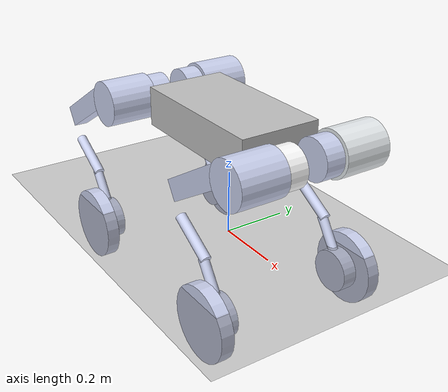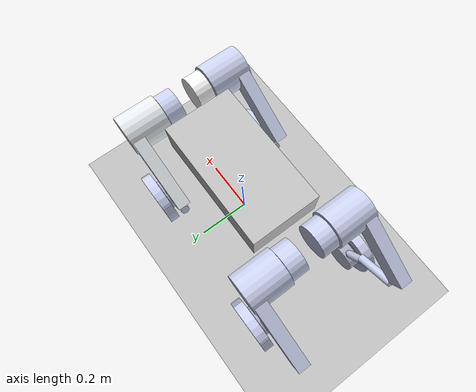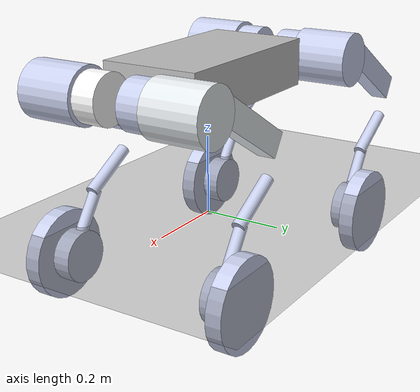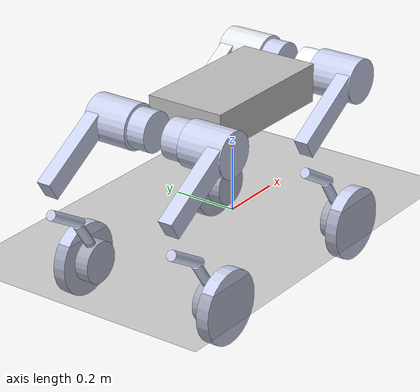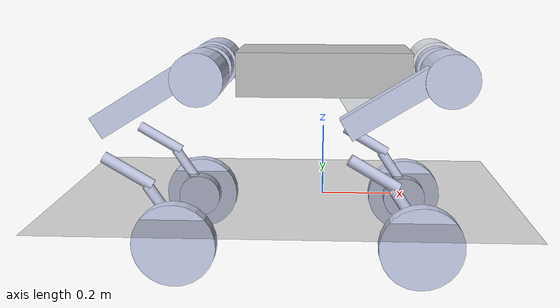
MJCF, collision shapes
<mujoco model="DOGURDF">
  <compiler angle="radian" meshdir="./meshes"/>

  <visual>
    <global offwidth="1920" offheight="1080"/>
    <quality shadowsize="4096"/>
    <map force="0.1" zfar="30"/>
    <rgba haze="0.15 0.25 0.35 1"/>
  </visual>

  <option timestep="0.005" iterations="10" ls_iterations="10" solver="Newton" integrator="Euler"
          impratio="10">
    <flag contact="enable" constraint="enable"/>
  </option>

  <default>
    <geom condim="3" friction="1.36 0.005 0.0001" solref="0.035 1.1" solimp="0.9 0.92 0.015"/>
    <joint damping="0.5" armature="0.01"/>
  </default>

  <asset>
    <texture name="grid" type="2d" builtin="checker" rgb1="0.3 0.3 0.3" rgb2="0.4 0.4 0.4"
             width="512" height="512" mark="edge" markrgb="0.2 0.2 0.2"/>
    <material name="grid_mat" texture="grid" texrepeat="20 20" texuniform="true"
              reflectance="0.1" shininess="0.1" specular="0.2"/>
    <mesh name="base_link" file="base_link.STL"/>
    <!-- Only the FL meshes exist on disk; the other three legs mirror them,
         matching how urdf/dogurdf.urdf reuses them with negative scale. -->
    <mesh name="FL_hip_mesh" file="FL_hip_link.STL"/>
    <mesh name="FR_hip_mesh" file="FL_hip_link.STL" scale="1 -1 1"/>
    <mesh name="RL_hip_mesh" file="FL_hip_link.STL" scale="-1 1 1"/>
    <mesh name="RR_hip_mesh" file="FL_hip_link.STL" scale="-1 -1 1"/>
    <mesh name="FL_thigh_mesh" file="FL_thigh_link.STL"/>
    <mesh name="FR_thigh_mesh" file="FL_thigh_link.STL" scale="1 -1 1"/>
    <mesh name="RL_thigh_mesh" file="FL_thigh_link.STL"/>
    <mesh name="RR_thigh_mesh" file="FL_thigh_link.STL" scale="1 -1 1"/>
    <mesh name="FL_calf_mesh" file="FL_calf_link.STL"/>
    <mesh name="FR_calf_mesh" file="FL_calf_link.STL" scale="1 -1 1"/>
    <mesh name="RL_calf_mesh" file="FL_calf_link.STL"/>
    <mesh name="RR_calf_mesh" file="FL_calf_link.STL" scale="1 -1 1"/>
    <mesh name="FL_wheel_mesh" file="FL_wheel_link.STL"/>
    <mesh name="FR_wheel_mesh" file="FL_wheel_link.STL" scale="1 -1 1"/>
    <mesh name="RL_wheel_mesh" file="FL_wheel_link.STL"/>
    <mesh name="RR_wheel_mesh" file="FL_wheel_link.STL" scale="1 -1 1"/>
  </asset>

  <worldbody>
    <!-- Ground: the only geom with contype=1, so it is the sole contact partner. -->
    <geom name="floor" type="plane" size="50 50 0.01" material="grid_mat"
          contype="1" conaffinity="0" priority="1" friction="1.36 0.005 0.0001" condim="3"/>

    <light name="ambient" mode="fixed" directional="true"
           diffuse="0.4 0.4 0.4" specular="0.1 0.1 0.1" pos="0 0 5" dir="0 0 -1"/>
    <light name="spotlight" mode="targetbodycom" target="torso"
           diffuse="0.8 0.8 0.8" specular="0.3 0.3 0.3" pos="0 -3 4" cutoff="45"/>
    <light name="fill_light" mode="fixed" directional="true"
           diffuse="0.3 0.3 0.4" specular="0.1 0.1 0.1" pos="3 3 3" dir="-1 -1 -1"/>

    <!-- torso: body 1 (base_link from the URDF, renamed for consistency with
         the rest of the codebase, which resolves the trunk by the name "torso") -->
    <body name="torso" pos="0 0 0.36">
      <inertial pos="0 0 -4.0153e-07" quat="1 0 0 0" mass="21.5"
                diaginertia="0.0145439 0.122635 0.132604"/>
      <freejoint/>
      <site name="imu" pos="0 0 0"/>
      <camera name="this_camera" mode="fixed" pos="0.30 0 0.06" euler="3.14 -1.57 1.57"
              resolution="480 640" fovy="58"/>
      <geom type="mesh" contype="0" conaffinity="0" group="1" density="0"
            rgba="0.75294 0.75294 0.75294 1" mesh="base_link"/>
      <geom name="torso_collision" type="box" size="0.237 0.125 0.06" pos="0 0 0"
            contype="0" conaffinity="1" group="3" rgba="0.75294 0.75294 0.75294 0"/>

      <!-- FL (Front Left) leg: bodies 2-5, joints 0-3 -->
      <body name="FL_hip_link" pos="0.3265 0.08 0">
        <inertial pos="-0.0096559 -0.00827404 0.00195208" quat="0.442032 0.549064 0.445917 0.551629" mass="1.5" diaginertia="0.00109134 0.000920711 0.000558709"/>
        <joint name="FL_hip_joint" pos="0 0 0" axis="1 0 0" range="-0.6 0.6" actuatorfrcrange="-150 150" frictionloss="0.2" armature="0.0289"/>
        <geom type="mesh" contype="0" conaffinity="0" group="1" density="0" rgba="0.792157 0.819608 0.933333 1" mesh="FL_hip_mesh"/>
        <geom name="FL_hip_collision" size="0.0615 0.03" pos="0 -0.02 0" quat="0.707105 0.707108 0 0" type="cylinder" contype="0" conaffinity="1" group="3" rgba="0.792157 0.819608 0.933333 0"/>
        <body name="FL_thigh_link" pos="0 0.1308 0" quat="0.872818 0 0.488046 0">
          <inertial pos="0 0 -0.0639" quat="1 0 0 0" mass="4.4" diaginertia="0.0498 0.0498 0.004"/>
          <joint name="FL_thigh_joint" pos="0 0 0" axis="0 1 0" range="-0.7 1.75" actuatorfrcrange="-150 150" frictionloss="0.2" armature="0.0289"/>
          <geom type="mesh" contype="0" conaffinity="0" group="1" density="0" rgba="0.898039 0.917647 0.929412 1" mesh="FL_thigh_mesh"/>
          <geom name="FL_thigh_collision_a" size="0.07 0.0725" pos="0 -0.046 0" quat="0.707105 0.707108 0 0" type="cylinder" contype="0" conaffinity="1" group="3" rgba="0.898039 0.917647 0.929412 0"/>
          <geom name="FL_thigh_collision_b" size="0.032 0.0225 0.15" pos="-0.03 0 -0.145" type="box" contype="0" conaffinity="1" group="3" rgba="0.898039 0.917647 0.929412 0"/>
          <body name="FL_calf_link" pos="0 0 -0.34" quat="0.51675 -1.24664e-06 -0.856137 1.24664e-06">
            <inertial pos="-0.052915 0.0225 -0.161555" quat="0.727889 0.125575 0.105269 0.665828" mass="0.82" diaginertia="0.00804 0.00804 0.0002"/>
            <joint name="FL_calf_joint" pos="0 0 0" axis="0 1 0" range="-1 0.35" actuatorfrcrange="-150 150" frictionloss="0.2" armature="0.1575"/>
            <geom type="mesh" contype="0" conaffinity="0" group="1" density="0" rgba="0.79216 0.81961 0.93333 1" mesh="FL_calf_mesh"/>
            <geom name="FL_calf_collision_a" size="0.016 0.075" pos="-0.01 0 -0.12" type="cylinder" contype="0" conaffinity="1" group="3" rgba="0.79216 0.81961 0.93333 0"/>
            <geom name="FL_calf_collision_b" size="0.015 0.065" pos="-0.045 0 -0.24" quat="0.974794 0 0.223106 0" type="cylinder" contype="0" conaffinity="1" group="3" rgba="0.79216 0.81961 0.93333 0"/>
            <geom name="FL_calf_collision_c" size="0.065 0.0225" pos="-0.105 0 -0.32" quat="0.707107 0.707107 0 0" type="cylinder" contype="0" conaffinity="1" group="3" rgba="0.79216 0.81961 0.93333 0"/>
            <body name="FL_wheel_link" pos="-0.10583 0.045 -0.32311" quat="0.994159 0 -0.107924 0">
              <inertial pos="-1.56973e-06 0.00208085 9.8644e-08" quat="0.544557 0.451063 0.451063 0.544557" mass="2.39" diaginertia="0.00248447 0.00127102 0.00127099"/>
              <joint name="FL_wheel_joint" pos="0 0 0" axis="0 1 0" actuatorfrcrange="-53 53" frictionloss="0.05" armature="0.00396"/>
              <geom type="mesh" contype="0" conaffinity="0" group="1" density="0" rgba="0.792157 0.819608 0.933333 1" mesh="FL_wheel_mesh"/>
              <geom name="FL" size="0.113 0.02" quat="0.707107 0.707107 0 0" type="cylinder" contype="0" conaffinity="1" group="3" rgba="0.792157 0.819608 0.933333 0"/>
              <site name="fl_wheel_site" pos="0 0 0" size="0.01"/>
            </body>
          </body>
        </body>
      </body>

      <!-- FR (Front Right) leg: bodies 6-9, joints 4-7 -->
      <body name="FR_hip_link" pos="0.3265 -0.08 0">
        <inertial pos="-0.0096559 0.00827404 -0.00195208" quat="0.442032 0.549064 0.445917 0.551629" mass="1.5" diaginertia="0.00108808 0.000917958 0.000557038"/>
        <joint name="FR_hip_joint" pos="0 0 0" axis="1 0 0" range="-0.6 0.6" actuatorfrcrange="-150 150" frictionloss="0.2" armature="0.0289"/>
        <geom type="mesh" contype="0" conaffinity="0" group="1" density="0" rgba="1 1 1 1" mesh="FR_hip_mesh"/>
        <geom name="FR_hip_collision" size="0.0615 0.03" pos="0 0.02 0" quat="0.707105 0.707108 0 0" type="cylinder" contype="0" conaffinity="1" group="3" rgba="1 1 1 0"/>
        <body name="FR_thigh_link" pos="0 -0.1308 0" quat="0.872818 0 0.488046 0">
          <inertial pos="0 0 -0.0639" quat="1 0 0 0" mass="4.4" diaginertia="0.0498 0.0498 0.004"/>
          <joint name="FR_thigh_joint" pos="0 0 0" axis="0 1 0" range="-0.7 1.75" actuatorfrcrange="-150 150" frictionloss="0.2" armature="0.0289"/>
          <geom type="mesh" contype="0" conaffinity="0" group="1" density="0" rgba="0.792157 0.819608 0.933333 1" mesh="FR_thigh_mesh"/>
          <geom name="FR_thigh_collision_a" size="0.07 0.0725" pos="0 0.046 0" quat="0.707105 0.707108 0 0" type="cylinder" contype="0" conaffinity="1" group="3" rgba="0.792157 0.819608 0.933333 0"/>
          <geom name="FR_thigh_collision_b" size="0.032 0.0225 0.15" pos="-0.03 0 -0.145" type="box" contype="0" conaffinity="1" group="3" rgba="0.792157 0.819608 0.933333 0"/>
          <body name="FR_calf_link" pos="0 0 -0.34" quat="0.51675 1.24664e-06 -0.856137 -1.24664e-06">
            <inertial pos="-0.052915 -0.0225 -0.161555" quat="0.665817 0.105272 0.125575 0.727899" mass="0.82" diaginertia="0.00804 0.00804 0.0002"/>
            <joint name="FR_calf_joint" pos="0 0 0" axis="0 1 0" range="-1 0.35" actuatorfrcrange="-150 150" frictionloss="0.2" armature="0.1575"/>
            <geom type="mesh" contype="0" conaffinity="0" group="1" density="0" rgba="0.792157 0.819608 0.933333 1" mesh="FR_calf_mesh"/>
            <geom name="FR_calf_collision_a" size="0.016 0.075" pos="-0.01 0 -0.12" type="cylinder" contype="0" conaffinity="1" group="3" rgba="0.792157 0.819608 0.933333 0"/>
            <geom name="FR_calf_collision_b" size="0.015 0.065" pos="-0.045 0 -0.24" quat="0.974794 0 0.223106 0" type="cylinder" contype="0" conaffinity="1" group="3" rgba="0.792157 0.819608 0.933333 0"/>
            <geom name="FR_calf_collision_c" size="0.065 0.0225" pos="-0.105 0 -0.32" quat="0.707107 0.707107 0 0" type="cylinder" contype="0" conaffinity="1" group="3" rgba="0.792157 0.819608 0.933333 0"/>
            <body name="FR_wheel_link" pos="-0.10583 -0.045 -0.32311" quat="0.994159 0 -0.107924 0">
              <inertial pos="3.51522e-07 -0.00208095 7.86999e-07" quat="0.689728 0.155807 0.155807 0.689728" mass="2.39" diaginertia="0.00248442 0.001271 0.00127096"/>
              <joint name="FR_wheel_joint" pos="0 0 0" axis="0 1 0" actuatorfrcrange="-53 53" frictionloss="0.05" armature="0.00396"/>
              <geom type="mesh" contype="0" conaffinity="0" group="1" density="0" rgba="0.792157 0.819608 0.933333 1" mesh="FR_wheel_mesh"/>
              <geom name="FR" size="0.113 0.02" quat="0.707107 0.707107 0 0" type="cylinder" contype="0" conaffinity="1" group="3" rgba="0.792157 0.819608 0.933333 0"/>
              <site name="fr_wheel_site" pos="0 0 0" size="0.01"/>
            </body>
          </body>
        </body>
      </body>

      <!-- RL (Rear Left) leg: bodies 10-13, joints 8-11 -->
      <body name="RL_hip_link" pos="-0.3265 0.08 0">
        <inertial pos="0.0096559 -0.008274 -0.0019521" quat="0.551629 0.445917 0.549064 0.442032" mass="1.5" diaginertia="0.00109135 0.000920719 0.000558714"/>
        <joint name="RL_hip_joint" pos="0 0 0" axis="1 0 0" range="-0.6 0.6" actuatorfrcrange="-150 150" frictionloss="0.2" armature="0.0289"/>
        <geom type="mesh" contype="0" conaffinity="0" group="1" density="0" rgba="0.79216 0.81961 0.93333 1" mesh="RL_hip_mesh"/>
        <geom name="RL_hip_collision" size="0.0615 0.03" pos="0 -0.02 0" quat="0.707105 0.707108 0 0" type="cylinder" contype="0" conaffinity="1" group="3" rgba="0.79216 0.81961 0.93333 0"/>
        <body name="RL_thigh_link" pos="0 0.1308 0" quat="0.872818 0 0.488046 0">
          <inertial pos="0 0 -0.0639" quat="1 0 0 0" mass="4.4" diaginertia="0.0498 0.0498 0.004"/>
          <joint name="RL_thigh_joint" pos="0 0 0" axis="0 1 0" range="-0.7 1.75" actuatorfrcrange="-150 150" frictionloss="0.2" armature="0.0289"/>
          <geom type="mesh" contype="0" conaffinity="0" group="1" density="0" rgba="0.792157 0.819608 0.933333 1" mesh="RL_thigh_mesh"/>
          <geom name="RL_thigh_collision_a" size="0.07 0.0725" pos="0 -0.046 0" quat="0.707105 0.707108 0 0" type="cylinder" contype="0" conaffinity="1" group="3" rgba="0.792157 0.819608 0.933333 0"/>
          <geom name="RL_thigh_collision_b" size="0.032 0.0225 0.15" pos="-0.03 0 -0.145" type="box" contype="0" conaffinity="1" group="3" rgba="0.792157 0.819608 0.933333 0"/>
          <body name="RL_calf_link" pos="0 0 -0.34" quat="0.51675 -1.24664e-06 -0.856137 1.24664e-06">
            <inertial pos="-0.052915 0.0225 -0.161555" quat="0.727889 0.125575 0.105269 0.665828" mass="0.82" diaginertia="0.00804 0.00804 0.0002"/>
            <joint name="RL_calf_joint" pos="0 0 0" axis="0 1 0" range="-1 0.35" actuatorfrcrange="-150 150" frictionloss="0.2" armature="0.1575"/>
            <geom type="mesh" contype="0" conaffinity="0" group="1" density="0" rgba="0.79216 0.81961 0.93333 1" mesh="RL_calf_mesh"/>
            <geom name="RL_calf_collision_a" size="0.016 0.075" pos="-0.01 0 -0.12" type="cylinder" contype="0" conaffinity="1" group="3" rgba="0.79216 0.81961 0.93333 0"/>
            <geom name="RL_calf_collision_b" size="0.015 0.065" pos="-0.045 0 -0.24" quat="0.974794 0 0.223106 0" type="cylinder" contype="0" conaffinity="1" group="3" rgba="0.79216 0.81961 0.93333 0"/>
            <geom name="RL_calf_collision_c" size="0.065 0.0225" pos="-0.105 0 -0.32" quat="0.707107 0.707107 0 0" type="cylinder" contype="0" conaffinity="1" group="3" rgba="0.79216 0.81961 0.93333 0"/>
            <body name="RL_wheel_link" pos="-0.10583 0.045 -0.32311" quat="0.994159 0 -0.107924 0">
              <inertial pos="9.84842e-08 0.00208085 1.56944e-06" quat="0.705386 -0.0493046 -0.0493046 0.705386" mass="2.39" diaginertia="0.00248447 0.00127102 0.00127099"/>
              <joint name="RL_wheel_joint" pos="0 0 0" axis="0 1 0" actuatorfrcrange="-53 53" frictionloss="0.05" armature="0.00396"/>
              <geom type="mesh" contype="0" conaffinity="0" group="1" density="0" rgba="0.792157 0.819608 0.933333 1" mesh="RL_wheel_mesh"/>
              <geom name="RL" size="0.113 0.02" quat="0.707107 0.707107 0 0" type="cylinder" contype="0" conaffinity="1" group="3" rgba="0.792157 0.819608 0.933333 0"/>
              <site name="rl_wheel_site" pos="0 0 0" size="0.01"/>
            </body>
          </body>
        </body>
      </body>

      <!-- RR (Rear Right) leg: bodies 14-17, joints 12-15 -->
      <body name="RR_hip_link" pos="-0.3265 -0.08 0">
        <inertial pos="0.0096559 0.00827404 0.00195208" quat="0.549064 0.442032 0.551629 0.445917" mass="1.5" diaginertia="0.00109134 0.000920711 0.000558709"/>
        <joint name="RR_hip_joint" pos="0 0 0" axis="1 0 0" range="-0.6 0.6" actuatorfrcrange="-150 150" frictionloss="0.2" armature="0.0289"/>
        <geom type="mesh" contype="0" conaffinity="0" group="1" density="0" rgba="0.792157 0.819608 0.933333 1" mesh="RR_hip_mesh"/>
        <geom name="RR_hip_collision" size="0.0615 0.03" pos="0 0.02 0" quat="0.707105 0.707108 0 0" type="cylinder" contype="0" conaffinity="1" group="3" rgba="0.792157 0.819608 0.933333 0"/>
        <body name="RR_thigh_link" pos="0 -0.1308 0" quat="0.872818 0 0.488046 0">
          <inertial pos="0 0 -0.0639" quat="1 0 0 0" mass="4.4" diaginertia="0.0498 0.0498 0.004"/>
          <joint name="RR_thigh_joint" pos="0 0 0" axis="0 1 0" range="-0.7 1.75" actuatorfrcrange="-150 150" frictionloss="0.2" armature="0.0289"/>
          <geom type="mesh" contype="0" conaffinity="0" group="1" density="0" rgba="0.792157 0.819608 0.933333 1" mesh="RR_thigh_mesh"/>
          <geom name="RR_thigh_collision_a" size="0.07 0.0725" pos="0 0.046 0" quat="0.707105 0.707108 0 0" type="cylinder" contype="0" conaffinity="1" group="3" rgba="0.792157 0.819608 0.933333 0"/>
          <geom name="RR_thigh_collision_b" size="0.032 0.0225 0.15" pos="-0.03 0 -0.145" type="box" contype="0" conaffinity="1" group="3" rgba="0.792157 0.819608 0.933333 0"/>
          <body name="RR_calf_link" pos="0 0 -0.34" quat="0.51675 1.24664e-06 -0.856137 -1.24664e-06">
            <inertial pos="-0.052915 -0.0225 -0.161555" quat="0.665817 0.105272 0.125575 0.727899" mass="0.82" diaginertia="0.00804 0.00804 0.0002"/>
            <joint name="RR_calf_joint" pos="0 0 0" axis="0 1 0" range="-1 0.35" actuatorfrcrange="-150 150" frictionloss="0.2" armature="0.1575"/>
            <geom type="mesh" contype="0" conaffinity="0" group="1" density="0" rgba="0.792157 0.819608 0.933333 1" mesh="RR_calf_mesh"/>
            <geom name="RR_calf_collision_a" size="0.016 0.075" pos="-0.01 0 -0.12" type="cylinder" contype="0" conaffinity="1" group="3" rgba="0.792157 0.819608 0.933333 0"/>
            <geom name="RR_calf_collision_b" size="0.015 0.065" pos="-0.045 0 -0.24" quat="0.974794 0 0.223106 0" type="cylinder" contype="0" conaffinity="1" group="3" rgba="0.792157 0.819608 0.933333 0"/>
            <geom name="RR_calf_collision_c" size="0.065 0.0225" pos="-0.105 0 -0.32" quat="0.707107 0.707107 0 0" type="cylinder" contype="0" conaffinity="1" group="3" rgba="0.792157 0.819608 0.933333 0"/>
            <body name="RR_wheel_link" pos="-0.10583 -0.045 -0.32311" quat="0.994159 0 -0.107924 0">
              <inertial pos="-5.05763e-07 -0.00208095 6.9794e-07" quat="0.675226 -0.209928 -0.209928 0.675226" mass="2.39" diaginertia="0.00248442 0.001271 0.00127096"/>
              <joint name="RR_wheel_joint" pos="0 0 0" axis="0 1 0" actuatorfrcrange="-53 53" frictionloss="0.05" armature="0.00396"/>
              <geom type="mesh" contype="0" conaffinity="0" group="1" density="0" rgba="0.792157 0.819608 0.933333 1" mesh="RR_wheel_mesh"/>
              <geom name="RR" size="0.113 0.02" quat="0.707107 0.707107 0 0" type="cylinder" contype="0" conaffinity="1" group="3" rgba="0.792157 0.819608 0.933333 0"/>
              <site name="rr_wheel_site" pos="0 0 0" size="0.01"/>
            </body>
          </body>
        </body>
      </body>

    </body>
  </worldbody>

  <!-- Actuator order == MJX joint order: per leg hip / thigh / calf / wheel. -->
  <actuator>
    <motor name="FL_hip_motor" joint="FL_hip_joint"/>
    <motor name="FL_thigh_motor" joint="FL_thigh_joint"/>
    <motor name="FL_calf_motor" joint="FL_calf_joint"/>
    <motor name="FL_wheel_motor" joint="FL_wheel_joint"/>
    <motor name="FR_hip_motor" joint="FR_hip_joint"/>
    <motor name="FR_thigh_motor" joint="FR_thigh_joint"/>
    <motor name="FR_calf_motor" joint="FR_calf_joint"/>
    <motor name="FR_wheel_motor" joint="FR_wheel_joint"/>
    <motor name="RL_hip_motor" joint="RL_hip_joint"/>
    <motor name="RL_thigh_motor" joint="RL_thigh_joint"/>
    <motor name="RL_calf_motor" joint="RL_calf_joint"/>
    <motor name="RL_wheel_motor" joint="RL_wheel_joint"/>
    <motor name="RR_hip_motor" joint="RR_hip_joint"/>
    <motor name="RR_thigh_motor" joint="RR_thigh_joint"/>
    <motor name="RR_calf_motor" joint="RR_calf_joint"/>
    <motor name="RR_wheel_motor" joint="RR_wheel_joint"/>
  </actuator>

  <sensor>
    <framequat name="imu_quat" objtype="site" objname="imu"/>
    <gyro name="imu_gyro" site="imu"/>
    <accelerometer name="imu_acc" site="imu"/>
    <framepos name="frame_pos" objtype="site" objname="imu"/>
    <framelinvel name="frame_vel" objtype="site" objname="imu"/>
  </sensor>

  <!-- Nominal stance: thigh=0.20 calf=-0.70 puts each wheel centre under its
       hip with the torso at z=0.347 (measured, wheel radius 0.113). -->
  <keyframe>
    <key name="home"
         qpos="0 0 0.347 1 0 0 0
               0 0.20 -0.70 0
               0 0.20 -0.70 0
               0 0.20 -0.70 0
               0 0.20 -0.70 0"/>
  </keyframe>
</mujoco>
